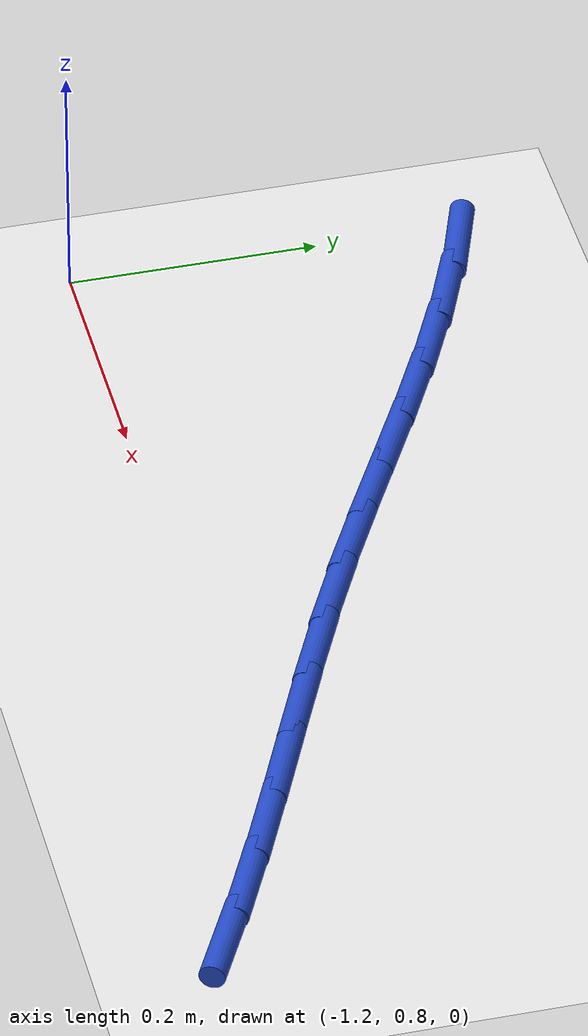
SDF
<sdf version="1.6">
 <world name="default">
  <model name="ground_plane">
   <static>1</static>
   <link name="link">
    <collision name="collision">
     <geometry><plane><normal>0 0 1</normal><size>100 100</size></plane></geometry>
     <surface><friction><ode><mu>100</mu><mu2>50</mu2></ode></friction></surface>
    </collision>
    <visual name="visual">
     <cast_shadows>0</cast_shadows>
     <geometry><plane><normal>0 0 1</normal><size>100 100</size></plane></geometry>
     <material>
      <script><uri>file://media/materials/scripts/gazebo.material</uri><name>Gazebo/WhiteGlow</name></script>
     </material>
    </visual>
   </link>
  </model>
  <model name="line">
   <link name="link_14">
    <pose>-0.4145505113834286 0.7392484412730926 0.01 0 1.57 -0.47653298565668556</pose>
    <collision name="collision">
     <geometry><cylinder><radius>0.01</radius><length>0.08</length></cylinder></geometry>
    </collision>
    <visual name="visual">
     <material>
      <script><name>Gazebo/Blue</name><uri>file://media/materials/scripts/gazebo.material</uri></script>
     </material>
     <geometry><cylinder><radius>0.01</radius><length>0.08</length></cylinder></geometry>
    </visual>
   </link>
   <link name="link_15">
    <pose>-0.47266192239475735 0.7692462528891957 0.01 0 1.57 -0.44736065605868425</pose>
    <collision name="collision">
     <geometry><cylinder><radius>0.01</radius><length>0.08</length></cylinder></geometry>
    </collision>
    <visual name="visual">
     <material>
      <script><name>Gazebo/Blue</name><uri>file://media/materials/scripts/gazebo.material</uri></script>
     </material>
     <geometry><cylinder><radius>0.01</radius><length>0.08</length></cylinder></geometry>
    </visual>
   </link>
   <link name="link_16">
    <pose>-0.5321688923329713 0.7977979344251175 0.01 0 1.57 -0.4295543069993782</pose>
    <collision name="collision">
     <geometry><cylinder><radius>0.01</radius><length>0.08</length></cylinder></geometry>
    </collision>
    <visual name="visual">
     <material>
      <script><name>Gazebo/Blue</name><uri>file://media/materials/scripts/gazebo.material</uri></script>
     </material>
     <geometry><cylinder><radius>0.01</radius><length>0.08</length></cylinder></geometry>
    </visual>
   </link>
   <link name="link_17">
    <pose>-0.592468235227813 0.8254199597243984 0.01 0 1.57 -0.4227027483390954</pose>
    <collision name="collision">
     <geometry><cylinder><radius>0.01</radius><length>0.08</length></cylinder></geometry>
    </collision>
    <visual name="visual">
     <material>
      <script><name>Gazebo/Blue</name><uri>file://media/materials/scripts/gazebo.material</uri></script>
     </material>
     <geometry><cylinder><radius>0.01</radius><length>0.08</length></cylinder></geometry>
    </visual>
   </link>
   <link name="link_18">
    <pose>-0.6529567651090266 0.8526288026305807 0.01 0 1.57 -0.4267037721871515</pose>
    <collision name="collision">
     <geometry><cylinder><radius>0.01</radius><length>0.08</length></cylinder></geometry>
    </collision>
    <visual name="visual">
     <material>
      <script><name>Gazebo/Blue</name><uri>file://media/materials/scripts/gazebo.material</uri></script>
     </material>
     <geometry><cylinder><radius>0.01</radius><length>0.08</length></cylinder></geometry>
    </visual>
   </link>
   <link name="link_19">
    <pose>-0.7130312960063552 0.8799409369872054 0.01 0 1.57 -0.4417844641180547</pose>
    <collision name="collision">
     <geometry><cylinder><radius>0.01</radius><length>0.08</length></cylinder></geometry>
    </collision>
    <visual name="visual">
     <material>
      <script><name>Gazebo/Blue</name><uri>file://media/materials/scripts/gazebo.material</uri></script>
     </material>
     <geometry><cylinder><radius>0.01</radius><length>0.08</length></cylinder></geometry>
    </visual>
   </link>
   <link name="link_20">
    <pose>-0.7720886419495426 0.9078728366378144 0.01 0 1.57 -0.4675527206212202</pose>
    <collision name="collision">
     <geometry><cylinder><radius>0.01</radius><length>0.08</length></cylinder></geometry>
    </collision>
    <visual name="visual">
     <material>
      <script><name>Gazebo/Blue</name><uri>file://media/materials/scripts/gazebo.material</uri></script>
     </material>
     <geometry><cylinder><radius>0.01</radius><length>0.08</length></cylinder></geometry>
    </visual>
   </link>
   <link name="link_21">
    <pose>-0.8295745462565951 0.9368969502952474 0.01 0 1.57 -0.4906909203016746</pose>
    <collision name="collision">
     <geometry><cylinder><radius>0.01</radius><length>0.08</length></cylinder></geometry>
    </collision>
    <visual name="visual">
     <material>
      <script><name>Gazebo/Blue</name><uri>file://media/materials/scripts/gazebo.material</uri></script>
     </material>
     <geometry><cylinder><radius>0.01</radius><length>0.08</length></cylinder></geometry>
    </visual>
   </link>
   <link name="link_22">
    <pose>-0.885639854222971 0.9668512967058084 0.01 0 1.57 -0.5003097595218432</pose>
    <collision name="collision">
     <geometry><cylinder><radius>0.01</radius><length>0.08</length></cylinder></geometry>
    </collision>
    <visual name="visual">
     <material>
      <script><name>Gazebo/Blue</name><uri>file://media/materials/scripts/gazebo.material</uri></script>
     </material>
     <geometry><cylinder><radius>0.01</radius><length>0.08</length></cylinder></geometry>
    </visual>
   </link>
   <link name="link_23">
    <pose>-0.9409647018306396 0.9970976544643506 0.01 0 1.57 -0.49567644907059155</pose>
    <collision name="collision">
     <geometry><cylinder><radius>0.01</radius><length>0.08</length></cylinder></geometry>
    </collision>
    <visual name="visual">
     <material>
      <script><name>Gazebo/Blue</name><uri>file://media/materials/scripts/gazebo.material</uri></script>
     </material>
     <geometry><cylinder><radius>0.01</radius><length>0.08</length></cylinder></geometry>
    </visual>
   </link>
   <link name="link_24">
    <pose>-0.9962420829098073 1.0269862330530473 0.01 0 1.57 -0.47671551359543923</pose>
    <collision name="collision">
     <geometry><cylinder><radius>0.01</radius><length>0.08</length></cylinder></geometry>
    </collision>
    <visual name="visual">
     <material>
      <script><name>Gazebo/Blue</name><uri>file://media/materials/scripts/gazebo.material</uri></script>
     </material>
     <geometry><cylinder><radius>0.01</radius><length>0.08</length></cylinder></geometry>
    </visual>
   </link>
   <link name="link_25">
    <pose>-1.052164991290681 1.0558672419540727 0.01 0 1.57 -0.4437969437390894</pose>
    <collision name="collision">
     <geometry><cylinder><radius>0.01</radius><length>0.08</length></cylinder></geometry>
    </collision>
    <visual name="visual">
     <material>
      <script><name>Gazebo/Blue</name><uri>file://media/materials/scripts/gazebo.material</uri></script>
     </material>
     <geometry><cylinder><radius>0.01</radius><length>0.08</length></cylinder></geometry>
    </visual>
   </link>
   <link name="link_26">
    <pose>-1.1094264208034676 1.0830908906495997 0.01 0 1.57 -0.39782096318075416</pose>
    <collision name="collision">
     <geometry><cylinder><radius>0.01</radius><length>0.08</length></cylinder></geometry>
    </collision>
    <visual name="visual">
     <material>
      <script><name>Gazebo/Blue</name><uri>file://media/materials/scripts/gazebo.material</uri></script>
     </material>
     <geometry><cylinder><radius>0.01</radius><length>0.08</length></cylinder></geometry>
    </visual>
   </link>
   <link name="link_27">
    <pose>-1.1687193652783745 1.108007388621803 0.01 0 1.57 -0.3403109022894124</pose>
    <collision name="collision">
     <geometry><cylinder><radius>0.01</radius><length>0.08</length></cylinder></geometry>
    </collision>
    <visual name="visual">
     <material>
      <script><name>Gazebo/Blue</name><uri>file://media/materials/scripts/gazebo.material</uri></script>
     </material>
     <geometry><cylinder><radius>0.01</radius><length>0.08</length></cylinder></geometry>
    </visual>
   </link>
  </model>
 </world>
</sdf>
